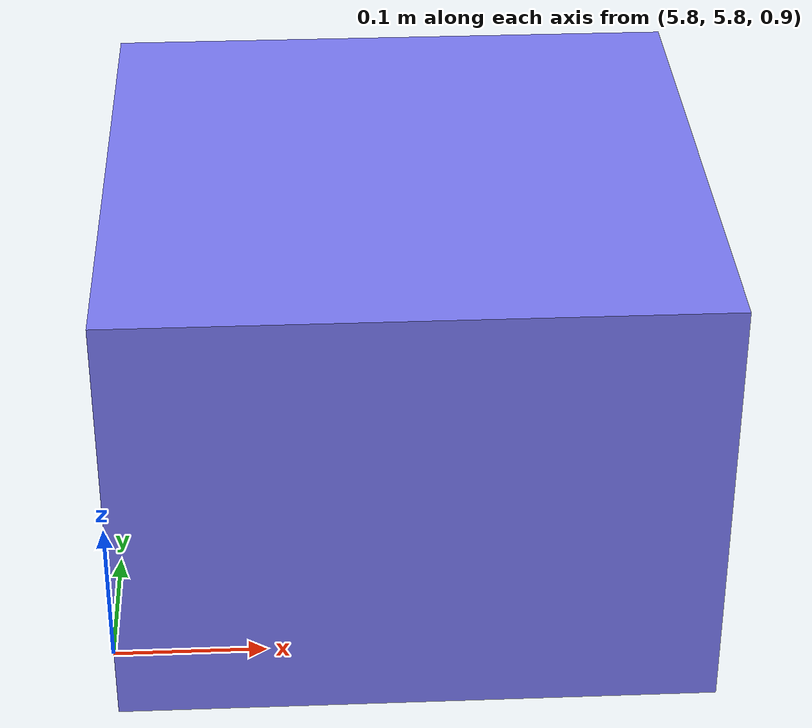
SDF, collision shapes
<?xml version="1.0"?>
<sdf version="1.8">

<!-- Gazebo references -->

<model name="surfer">
  <plugin
    filename="/home/arty/ros2_ws/src/surfer_simulation/surfer_gazebo_plugins/buoyant_link/build/libBuoyantLink.so"
    name="ignition::gazebo::systems::BuoyantLink">
    <link_name>hull</link_name>
    <surface_name>water_plane</surface_name>
  </plugin>

  <plugin
  filename="ignition-gazebo-hydrodynamics-system"
  name="ignition::gazebo::systems::Hydrodynamics">
      <link_name>hull</link_name>
      <xDotU>5</xDotU>
      <yDotV>5</yDotV>
      <zDotW>5</zDotW>
      <kDotP>1</kDotP>
      <mDotQ>1</mDotQ>
      <nDotR>0</nDotR>
      <xUU>0</xUU>
      <xU>-15</xU>
      <yVV>0</yVV>
      <yV>-15</yV>
      <zWW>0</zWW>
      <zW>-75</zW>
      <kPP>0</kPP>
      <kP>-17</kP>
      <mQQ>0</mQQ>
      <mQ>-17</mQ>
      <nRR>0</nRR>
      <nR>-10</nR>
  </plugin>

  <plugin
    filename="ignition-gazebo-joint-controller-system"
    name="ignition::gazebo::systems::JointController">
    <use_force_commands>true</use_force_commands>
    <joint_name>propeller_joint_fl</joint_name>
    <p_gain>100.0</p_gain>
    <i_gain>1.0</i_gain>
    <cmd_max>10</cmd_max>
    <cmd_min>-10</cmd_min>
  </plugin>
  <plugin
    filename="ignition-gazebo-joint-controller-system"
    name="ignition::gazebo::systems::JointController">
    <use_force_commands>true</use_force_commands>
    <joint_name>propeller_joint_fr</joint_name>
    <p_gain>100.0</p_gain>
    <i_gain>1.0</i_gain>
    <cmd_max>10</cmd_max>
    <cmd_min>-10</cmd_min>
  </plugin>
  <plugin
    filename="ignition-gazebo-joint-controller-system"
    name="ignition::gazebo::systems::JointController">
    <use_force_commands>true</use_force_commands>
    <joint_name>propeller_joint_bl</joint_name>
    <p_gain>100.0</p_gain>
    <i_gain>1.0</i_gain>
    <cmd_max>10</cmd_max>
    <cmd_min>-10</cmd_min>
  </plugin>
  <plugin
    filename="ignition-gazebo-joint-controller-system"
    name="ignition::gazebo::systems::JointController">
    <use_force_commands>true</use_force_commands>
    <joint_name>propeller_joint_br</joint_name>
    <p_gain>100.0</p_gain>
    <i_gain>1.0</i_gain>
    <cmd_max>10</cmd_max>
    <cmd_min>-10</cmd_min>
  </plugin>
  <plugin
    filename="/home/arty/ros2_ws/src/surfer_simulation/surfer_gazebo_plugins/propeller_link/build/libPropeller.so"
    name="ignition::gazebo::systems::Propeller">
    <joint_name>propeller_joint_fl</joint_name>
    <thrust_coefficient>0.0003</thrust_coefficient>
    <drag_coefficient>0.0000</drag_coefficient>
    <fluid_density>1000</fluid_density>
    <propeller_diameter>0.2</propeller_diameter>
  </plugin>
  <plugin
    filename="/home/arty/ros2_ws/src/surfer_simulation/surfer_gazebo_plugins/propeller_link/build/libPropeller.so"
    name="ignition::gazebo::systems::Propeller">
    <joint_name>propeller_joint_fr</joint_name>
    <thrust_coefficient>0.0003</thrust_coefficient>
    <drag_coefficient>0.0000</drag_coefficient>
    <fluid_density>1000</fluid_density>
    <propeller_diameter>0.2</propeller_diameter>
  </plugin>
  <plugin
    filename="/home/arty/ros2_ws/src/surfer_simulation/surfer_gazebo_plugins/propeller_link/build/libPropeller.so"
    name="ignition::gazebo::systems::Propeller">
    <joint_name>propeller_joint_bl</joint_name>
    <thrust_coefficient>0.0003</thrust_coefficient>
    <drag_coefficient>0.0000</drag_coefficient>
    <fluid_density>1000</fluid_density>
    <propeller_diameter>0.2</propeller_diameter>
  </plugin>
  <plugin
    filename="/home/arty/ros2_ws/src/surfer_simulation/surfer_gazebo_plugins/propeller_link/build/libPropeller.so"
    name="ignition::gazebo::systems::Propeller">
    <joint_name>propeller_joint_br</joint_name>
    <thrust_coefficient>0.0003</thrust_coefficient>
    <drag_coefficient>0.0000</drag_coefficient>
    <fluid_density>1000</fluid_density>
    <propeller_diameter>0.2</propeller_diameter>
  </plugin>

  <pose>6 6 1 0 0 0 </pose>
  <link name="hull">
    <visual name="visual">
      <pose>0 0 0 0 0 0</pose>
      <geometry>
        <mesh>
          <uri>/home/arty/ros2_ws/src/surfer_simulation/surfer_description/meshes/surf_hull.dae</uri>
        </mesh>
      </geometry>
      <material>
        <ambient>0.5 0.5 1.0 1</ambient>
        <diffuse>0.5 0.5 1.0 1</diffuse>
        <specular>0.0 0.0 1.0 1</specular>
      </material>
    </visual>
    <collision name="collision">
      <geometry>
        <box>
          <size>0.4 0.4 0.3</size>
        </box>
      </geometry>
    </collision>
    <inertial>
      <mass>25</mass>
      <inertia>
        <ixx>1.4</ixx>
        <ixy>0</ixy>
        <ixz>0</ixz>
        <iyy>1.4</iyy>
        <iyz>0</iyz>
        <izz>2.8</izz>
      </inertia>
    </inertial>
  </link>

  <link name ="propeller_fl">
    <pose>0.095 0.095 -0.011 0 0 -0.785</pose>
    <visual name="visual_fl">
      <geometry>
        <mesh>
          <uri>/home/arty/ros2_ws/src/surfer_simulation/surfer_description/meshes/T200_propeller.dae</uri>
        </mesh>
      </geometry>
    </visual>
    <collision name="collision_fl">
      <geometry>
        <box>
          <size>0.01 0.05 0.02</size>
        </box>
      </geometry>
      <surface>
         <contact>
           <collide_bitmask>0x01</collide_bitmask>
         </contact>
      </surface>
    </collision>
    <mass>0.005</mass>
    <inertia>
      <ixx>0.00000001</ixx>
      <ixy>0</ixy>
      <ixz>0</ixz>
      <iyy>0.00000001</iyy>
      <iyz>0</iyz>
      <izz>0.00000001</izz>
    </inertia>
  </link>

  <link name ="propeller_fr">
    <pose>0.095 -0.095 -0.011 0 0 0.785</pose>
    <visual name="visual_fr">
      <geometry>
        <mesh>
          <uri>/home/arty/ros2_ws/src/surfer_simulation/surfer_description/meshes/T200_propeller.dae</uri>
        </mesh>
      </geometry>
    </visual>
    <collision name="collision_fl">
      <geometry>
        <box>
          <size>0.01 0.05 0.02</size>
        </box>
      </geometry>
      <surface>
         <contact>
           <collide_bitmask>0x01</collide_bitmask>
         </contact>
      </surface>
    </collision>
    <mass>0.005</mass>
    <inertia>
      <ixx>0.00000001</ixx>
      <ixy>0</ixy>
      <ixz>0</ixz>
      <iyy>0.00000001</iyy>
      <iyz>0</iyz>
      <izz>0.00000001</izz>
    </inertia>
  </link>

  <link name ="propeller_bl">
    <pose>-0.095 0.095 -0.011 0 0 -2.356</pose>
    <visual name="visual_bl">
      <geometry>
        <mesh>
          <uri>/home/arty/ros2_ws/src/surfer_simulation/surfer_description/meshes/T200_propeller.dae</uri>
        </mesh>
      </geometry>
    </visual>
    <collision name="collision_bl">
      <geometry>
        <box>
          <size>0.01 0.05 0.02</size>
        </box>
      </geometry>
      <surface>
         <contact>
           <collide_bitmask>0x01</collide_bitmask>
         </contact>
      </surface>
    </collision>
    <mass>0.005</mass>
    <inertia>
      <ixx>0.00000001</ixx>
      <ixy>0</ixy>
      <ixz>0</ixz>
      <iyy>0.00000001</iyy>
      <iyz>0</iyz>
      <izz>0.00000001</izz>
    </inertia>
  </link>

  <link name ="propeller_br">
    <pose>-0.095 -0.095 -0.011 0 0 2.356</pose>
    <visual name="visual_br">
      <geometry>
        <mesh>
          <uri>/home/arty/ros2_ws/src/surfer_simulation/surfer_description/meshes/T200_propeller.dae</uri>
        </mesh>
      </geometry>
    </visual>
    <collision name="collision_br">
      <geometry>
        <box>
          <size>0.01 0.05 0.02</size>
        </box>
      </geometry>
      <surface>
         <contact>
           <collide_bitmask>0x01</collide_bitmask>
         </contact>
      </surface>
    </collision>
    <mass>0.005</mass>
    <inertia>
      <ixx>0.00000001</ixx>
      <ixy>0</ixy>
      <ixz>0</ixz>
      <iyy>0.00000001</iyy>
      <iyz>0</iyz>
      <izz>0.00000001</izz>
    </inertia>
  </link>

  <joint name="propeller_joint_fl" type="revolute">
    <pose>0 0 0 0 0 0</pose>
    <parent>hull</parent>
    <child>propeller_fl</child>
    <axis>
      <xyz>1 0 0</xyz>
    </axis>
  </joint>

  <joint name="propeller_joint_fr" type="revolute">
    <pose>0 0 0 0 0 0</pose>
    <parent>hull</parent>
    <child>propeller_fr</child>
    <axis>
      <xyz>1 0 0</xyz>
    </axis>
  </joint>

  <joint name="propeller_joint_bl" type="revolute">
    <pose>0 0 0 0 0 0</pose>
    <parent>hull</parent>
    <child>propeller_bl</child>
    <axis>
      <xyz>1 0 0</xyz>
    </axis>
  </joint>

  <joint name="propeller_joint_br" type="revolute">
    <pose>0 0 0 0 0 0</pose>
    <parent>hull</parent>
    <child>propeller_br</child>
    <axis>
      <xyz>1 0 0</xyz>
    </axis>
  </joint>

  <link name="thruster_housing_fr">
    <visual name="housing_fr">
      <pose>0.095 -0.095 -0.011 -1.579 0 0.785</pose>
      <geometry>
        <mesh>
          <uri>/home/arty/ros2_ws/src/surfer_simulation/surfer_description/meshes/T200_housing.dae</uri>
        </mesh>
      </geometry>
    </visual>
    <collision name="col_housing_fr">
      <geometry>
        <cylinder>
          <radius>0.02</radius>
          <length>0.03</length>
        </cylinder>
      </geometry>
      <surface>
         <contact>
           <collide_bitmask>0x02</collide_bitmask>
         </contact>
      </surface>
    </collision>
  </link>

  <joint name="housing_joint_fr" type="fixed">
      <parent>hull</parent>
      <child>thruster_housing_fr</child>
  </joint>

  <link name="thruster_housing_fl">
    <visual name="vis_housing_fl">
      <pose>0.095 0.095 -0.011 -1.579 0 -0.785</pose>
      <geometry>
        <mesh>
          <uri>/home/arty/ros2_ws/src/surfer_simulation/surfer_description/meshes/T200_housing.dae</uri>
        </mesh>
      </geometry>
    </visual>
    <collision name="col_housing_fl">
      <geometry>
        <cylinder>
          <radius>0.02</radius>
          <length>0.03</length>
        </cylinder>
      </geometry>
      <surface>
         <contact>
           <collide_bitmask>0x02</collide_bitmask>
         </contact>
      </surface>
    </collision>
  </link>

  <joint name="housing_joint_fl" type="fixed">
      <parent>hull</parent>
      <child>thruster_housing_fl</child>
  </joint>

  <link name="thruster_housing_br">
    <visual name="housing_br">
      <pose>-0.095 -0.095 -0.011 -1.579 0 2.356</pose>
      <geometry>
        <mesh>
          <uri>/home/arty/ros2_ws/src/surfer_simulation/surfer_description/meshes/T200_housing.dae</uri>
        </mesh>
      </geometry>
    </visual>
    <collision name="col_housing_br">
      <geometry>
        <cylinder>
          <radius>0.02</radius>
          <length>0.03</length>
        </cylinder>
      </geometry>
      <surface>
         <contact>
           <collide_bitmask>0x02</collide_bitmask>
         </contact>
      </surface>
    </collision>
  </link>

  <joint name="housing_joint_br" type="fixed">
      <parent>hull</parent>
      <child>thruster_housing_br</child>
  </joint>

  <link name="thruster_housing_bl">
    <visual name="vis_housing_bl">
      <pose>-0.095 0.095 -0.011 -1.579 0 -2.356</pose>
      <geometry>
        <mesh>
          <uri>/home/arty/ros2_ws/src/surfer_simulation/surfer_description/meshes/T200_housing.dae</uri>
        </mesh>
      </geometry>
    </visual>
    <collision name="col_housing_bl">
      <geometry>
        <cylinder>
          <radius>0.02</radius>
          <length>0.03</length>
        </cylinder>
      </geometry>
      <surface>
         <contact>
           <collide_bitmask>0x02</collide_bitmask>
         </contact>
      </surface>
    </collision>
  </link>

  <joint name="housing_joint_bl" type="fixed">
      <parent>hull</parent>
      <child>thruster_housing_bl</child>
  </joint>

</model>

</sdf>
